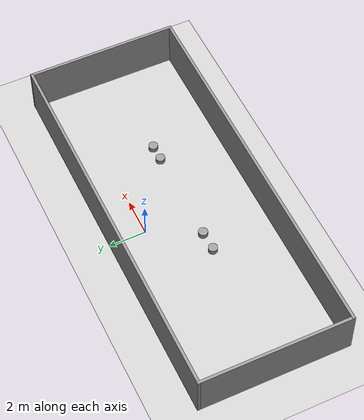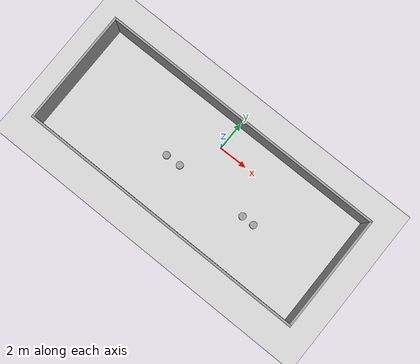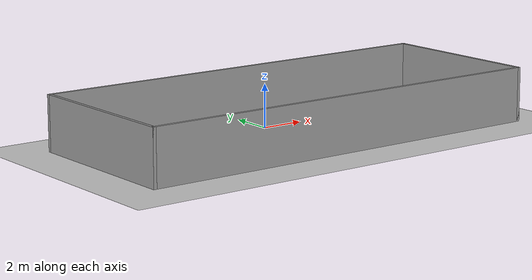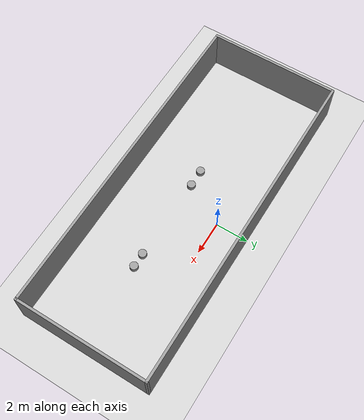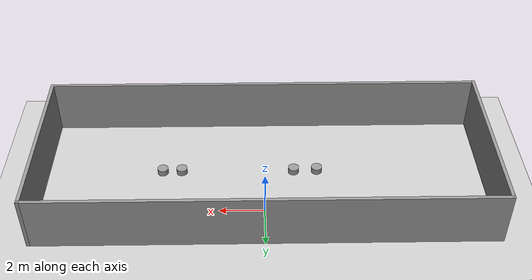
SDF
<sdf version="1.7">
 <world name="default">
  <light name="sun" type="directional">
   <pose>0 0 10 0 -0 0</pose>
   <diffuse>0.8 0.8 0.8 1</diffuse>
   <specular>0.2 0.2 0.2 1</specular>
   <attenuation>
    <range>1000</range>
    <constant>0.9</constant>
    <linear>0.01</linear>
    <quadratic>0.001</quadratic>
   </attenuation>
   <direction>-0.5 0.1 -0.9</direction>
   <spot><inner_angle>0</inner_angle><outer_angle>0</outer_angle><falloff>0</falloff></spot>
  </light>
  <model name="ground_plane">
   <static>1</static>
   <link name="link">
    <collision name="collision">
     <geometry><plane><normal>0 0 1</normal><size>100 100</size></plane></geometry>
     <surface><friction><ode><mu>100</mu><mu2>50</mu2></ode></friction></surface>
    </collision>
    <visual name="visual">
     <cast_shadows>0</cast_shadows>
     <geometry><plane><normal>0 0 1</normal><size>100 100</size></plane></geometry>
     <material>
      <script><uri>file://media/materials/scripts/gazebo.material</uri><name>Gazebo/Grey</name></script>
     </material>
    </visual>
   </link>
  </model>
  <gravity>0 0 -9.8</gravity>
  <magnetic_field>6e-06 2.3e-05 -4.2e-05</magnetic_field>
  <atmosphere type="adiabatic"/>
  <physics type="ode">
   <max_step_size>0.001</max_step_size>
   <real_time_factor>1</real_time_factor>
   <real_time_update_rate>1000</real_time_update_rate>
  </physics>
  <scene><ambient>0.4 0.4 0.4 1</ambient><background>0.7 0.7 0.7 1</background><shadows>1</shadows></scene>
  <audio><device>default</device></audio>
  <spherical_coordinates>
   <surface_model>EARTH_WGS84</surface_model>
   <latitude_deg>0</latitude_deg>
   <longitude_deg>0</longitude_deg>
   <elevation>0</elevation>
   <heading_deg>0</heading_deg>
  </spherical_coordinates>
  <model name="hallway2">
   <pose>-0.013628 -2.04628 0 0 -0 0</pose>
   <link name="Wall_1">
    <collision name="Wall_1_Collision">
     <geometry><box><size>20 0.15 2.5</size></box></geometry>
     <pose>0 0 1.25 0 -0 0</pose>
    </collision>
    <visual name="Wall_1_Visual">
     <pose>0 0 1.25 0 -0 0</pose>
     <geometry><box><size>20 0.15 2.5</size></box></geometry>
     <material>
      <script><uri>file://media/materials/scripts/gazebo.material</uri><name>Gazebo/Grey</name></script>
      <ambient>1 1 1 1</ambient>
     </material>
     <meta><layer>0</layer></meta>
    </visual>
    <pose>-0 -3.925 0 0 -0 0</pose>
   </link>
   <link name="Wall_2">
    <collision name="Wall_2_Collision">
     <geometry><box><size>8 0.15 2.5</size></box></geometry>
     <pose>0 0 1.25 0 -0 0</pose>
    </collision>
    <visual name="Wall_2_Visual">
     <pose>0 0 1.25 0 -0 0</pose>
     <geometry><box><size>8 0.15 2.5</size></box></geometry>
     <material>
      <script><uri>file://media/materials/scripts/gazebo.material</uri><name>Gazebo/Grey</name></script>
      <ambient>1 1 1 1</ambient>
     </material>
     <meta><layer>0</layer></meta>
    </visual>
    <pose>9.925 -0 0 0 -0 1.5708</pose>
   </link>
   <link name="Wall_3">
    <collision name="Wall_3_Collision">
     <geometry><box><size>20 0.15 2.5</size></box></geometry>
     <pose>0 0 1.25 0 -0 0</pose>
    </collision>
    <visual name="Wall_3_Visual">
     <pose>0 0 1.25 0 -0 0</pose>
     <geometry><box><size>20 0.15 2.5</size></box></geometry>
     <material>
      <script><uri>file://media/materials/scripts/gazebo.material</uri><name>Gazebo/Grey</name></script>
      <ambient>1 1 1 1</ambient>
     </material>
     <meta><layer>0</layer></meta>
    </visual>
    <pose>-0 3.925 0 0 -0 3.14159</pose>
   </link>
   <link name="Wall_4">
    <collision name="Wall_4_Collision">
     <geometry><box><size>8 0.15 2.5</size></box></geometry>
     <pose>0 0 1.25 0 -0 0</pose>
    </collision>
    <visual name="Wall_4_Visual">
     <pose>0 0 1.25 0 -0 0</pose>
     <geometry><box><size>8 0.15 2.5</size></box></geometry>
     <material>
      <script><uri>file://media/materials/scripts/gazebo.material</uri><name>Gazebo/Grey</name></script>
      <ambient>1 1 1 1</ambient>
     </material>
     <meta><layer>0</layer></meta>
    </visual>
    <pose>-9.925 -0 0 0 -0 -1.5708</pose>
   </link>
   <static>1</static>
  </model>
  <model name="unit_cylinder">
   <pose>4.63483 -2.54239 0.138491 0 -0 0</pose>
   <link name="link">
    <inertial>
     <mass>1</mass>
     <inertia><ixx>0.145833</ixx><ixy>0</ixy><ixz>0</ixz><iyy>0.145833</iyy><iyz>0</iyz><izz>0.125</izz></inertia>
    </inertial>
    <collision name="collision">
     <geometry><cylinder><radius>0.243687</radius><length>0.276982</length></cylinder></geometry>
    </collision>
    <visual name="visual">
     <geometry><cylinder><radius>0.243687</radius><length>0.276982</length></cylinder></geometry>
     <material>
      <script><name>Gazebo/Grey</name><uri>file://media/materials/scripts/gazebo.material</uri></script>
     </material>
    </visual>
   </link>
  </model>
  <model name="unit_cylinder_clone">
   <pose>3.77012 -2.54662 0.138484 1e-06 1e-06 0</pose>
   <link name="link">
    <inertial>
     <mass>1</mass>
     <inertia><ixx>0.145833</ixx><ixy>0</ixy><ixz>0</ixz><iyy>0.145833</iyy><iyz>0</iyz><izz>0.125</izz></inertia>
    </inertial>
    <collision name="collision">
     <geometry><cylinder><radius>0.243687</radius><length>0.276982</length></cylinder></geometry>
    </collision>
    <visual name="visual">
     <geometry><cylinder><radius>0.243687</radius><length>0.276982</length></cylinder></geometry>
     <material>
      <script><name>Gazebo/Grey</name><uri>file://media/materials/scripts/gazebo.material</uri></script>
     </material>
    </visual>
   </link>
  </model>
  <model name="unit_cylinder_clone_clone">
   <pose>-1.33983 -2.52234 0.138488 -1e-06 -1e-06 0</pose>
   <link name="link">
    <inertial>
     <mass>1</mass>
     <inertia><ixx>0.145833</ixx><ixy>0</ixy><ixz>0</ixz><iyy>0.145833</iyy><iyz>0</iyz><izz>0.125</izz></inertia>
    </inertial>
    <collision name="collision">
     <geometry><cylinder><radius>0.243687</radius><length>0.276982</length></cylinder></geometry>
    </collision>
    <visual name="visual">
     <geometry><cylinder><radius>0.243687</radius><length>0.276982</length></cylinder></geometry>
     <material>
      <script><name>Gazebo/Grey</name><uri>file://media/materials/scripts/gazebo.material</uri></script>
     </material>
    </visual>
   </link>
  </model>
  <model name="unit_cylinder_clone_clone_0">
   <pose>-2.3978 -2.54621 0.138484 1e-06 1e-06 0</pose>
   <link name="link">
    <inertial>
     <mass>1</mass>
     <inertia><ixx>0.145833</ixx><ixy>0</ixy><ixz>0</ixz><iyy>0.145833</iyy><iyz>0</iyz><izz>0.125</izz></inertia>
    </inertial>
    <collision name="collision">
     <geometry><cylinder><radius>0.243687</radius><length>0.276982</length></cylinder></geometry>
    </collision>
    <visual name="visual">
     <geometry><cylinder><radius>0.243687</radius><length>0.276982</length></cylinder></geometry>
     <material>
      <script><name>Gazebo/Grey</name><uri>file://media/materials/scripts/gazebo.material</uri></script>
     </material>
    </visual>
   </link>
  </model>
 </world>
</sdf>
